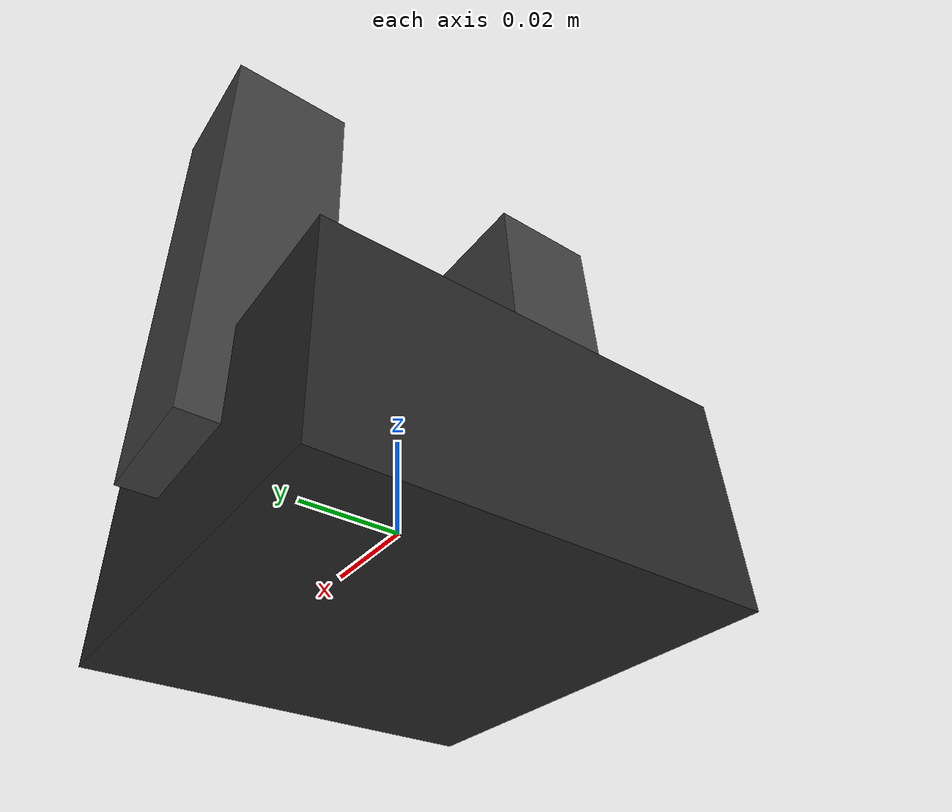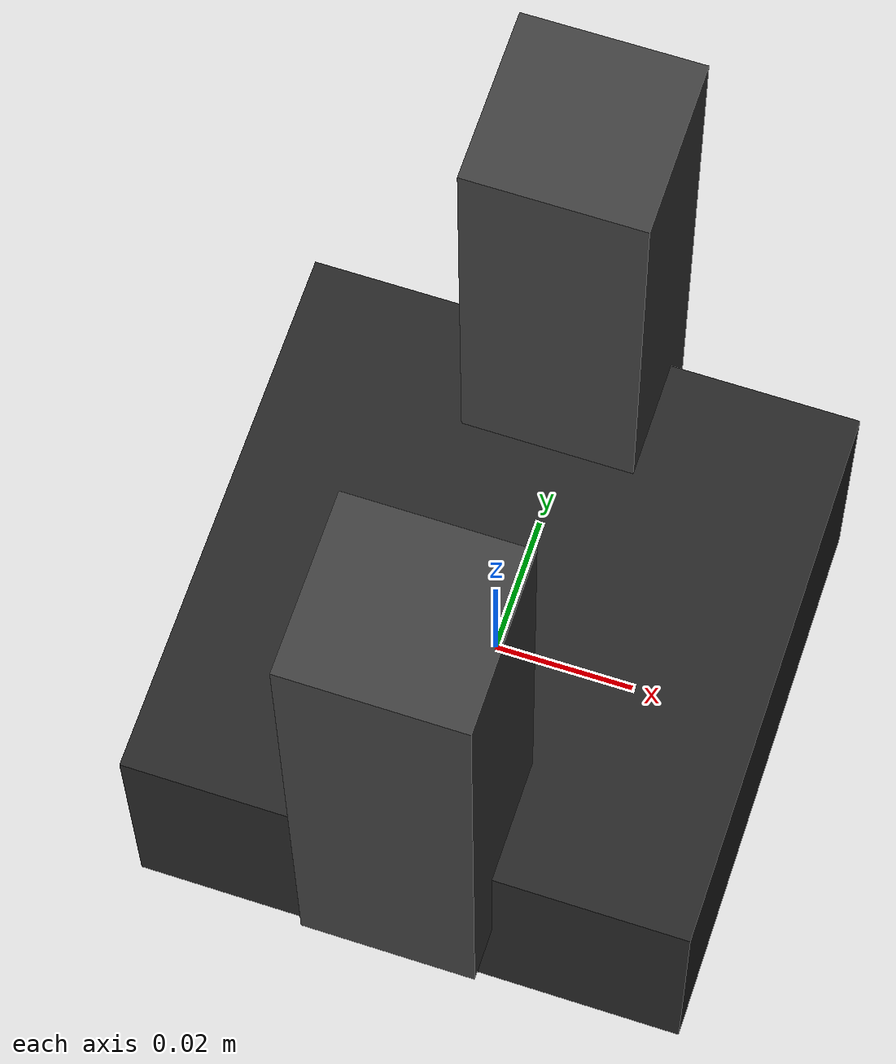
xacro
<?xml version="1.0"?>
<robot xmlns:xacro="http://www.ros.org/wiki/xacro">

  <!-- =========================
       GRIPPER BASE
       ========================= -->

  <link name="gripper_base_link">
    <visual>
      <origin xyz="0 0 0" rpy="0 0 0"/>
      <geometry>
        <box size="0.08 0.08 0.04"/>
      </geometry>
      <material name="gripper_black">
        <color rgba="0.15 0.15 0.15 1"/>
      </material>
    </visual>

    <collision>
      <origin xyz="0 0 0" rpy="0 0 0"/>
      <geometry>
        <box size="0.08 0.08 0.04"/>
      </geometry>
    </collision>

    <inertial>
      <origin xyz="0 0 0" rpy="0 0 0"/>
      <mass value="0.20"/>
      <inertia
        ixx="0.0002"
        ixy="0.0"
        ixz="0.0"
        iyy="0.0002"
        iyz="0.0"
        izz="0.0002"/>
    </inertial>
  </link>

  <!-- =========================
       LEFT FINGER
       ========================= -->

  <link name="left_finger_link">
    <visual>
      <origin xyz="0 0 0.045" rpy="0 0 0"/>
      <geometry>
        <box size="0.025 0.025 0.09"/>
      </geometry>
      <material name="finger_left">
        <color rgba="0.25 0.25 0.25 1"/>
      </material>
    </visual>

    <collision>
      <origin xyz="0 0 0.045" rpy="0 0 0"/>
      <geometry>
        <box size="0.025 0.025 0.09"/>
      </geometry>
    </collision>

    <inertial>
      <origin xyz="0 0 0.045" rpy="0 0 0"/>
      <mass value="0.05"/>
      <inertia
        ixx="0.00005"
        ixy="0.0"
        ixz="0.0"
        iyy="0.00005"
        iyz="0.0"
        izz="0.00001"/>
    </inertial>
  </link>

  <joint name="left_finger_joint" type="prismatic">
    <parent link="gripper_base_link"/>
    <child link="left_finger_link"/>

    <origin xyz="0 0.035 0" rpy="0 0 0"/>
    <axis xyz="0 1 0"/>

    <limit
      lower="0.0"
      upper="0.045"
      effort="20"
      velocity="0.2"/>
  </joint>

  <!-- =========================
       RIGHT FINGER
       ========================= -->

  <link name="right_finger_link">
    <visual>
      <origin xyz="0 0 0.045" rpy="0 0 0"/>
      <geometry>
        <box size="0.025 0.025 0.09"/>
      </geometry>
      <material name="finger_right">
        <color rgba="0.25 0.25 0.25 1"/>
      </material>
    </visual>

    <collision>
      <origin xyz="0 0 0.045" rpy="0 0 0"/>
      <geometry>
        <box size="0.025 0.025 0.09"/>
      </geometry>
    </collision>

    <inertial>
      <origin xyz="0 0 0.045" rpy="0 0 0"/>
      <mass value="0.05"/>
      <inertia
        ixx="0.00005"
        ixy="0.0"
        ixz="0.0"
        iyy="0.00005"
        iyz="0.0"
        izz="0.00001"/>
    </inertial>
  </link>

  <joint name="right_finger_joint" type="prismatic">
    <parent link="gripper_base_link"/>
    <child link="right_finger_link"/>

    <origin xyz="0 -0.035 0" rpy="0 0 0"/>
    <axis xyz="0 -1 0"/>

    <limit
      lower="0.0"
      upper="0.045"
      effort="20"
      velocity="0.2"/>
  </joint>

  <!-- =========================
       GAZEBO CONTACT
       ========================= -->

  <gazebo reference="left_finger_link">
    <mu1>2.0</mu1>
    <mu2>2.0</mu2>
    <kp>1000000.0</kp>
    <kd>10.0</kd>
  </gazebo>

  <gazebo reference="right_finger_link">
    <mu1>2.0</mu1>
    <mu2>2.0</mu2>
    <kp>1000000.0</kp>
    <kd>10.0</kd>
  </gazebo>

</robot>
